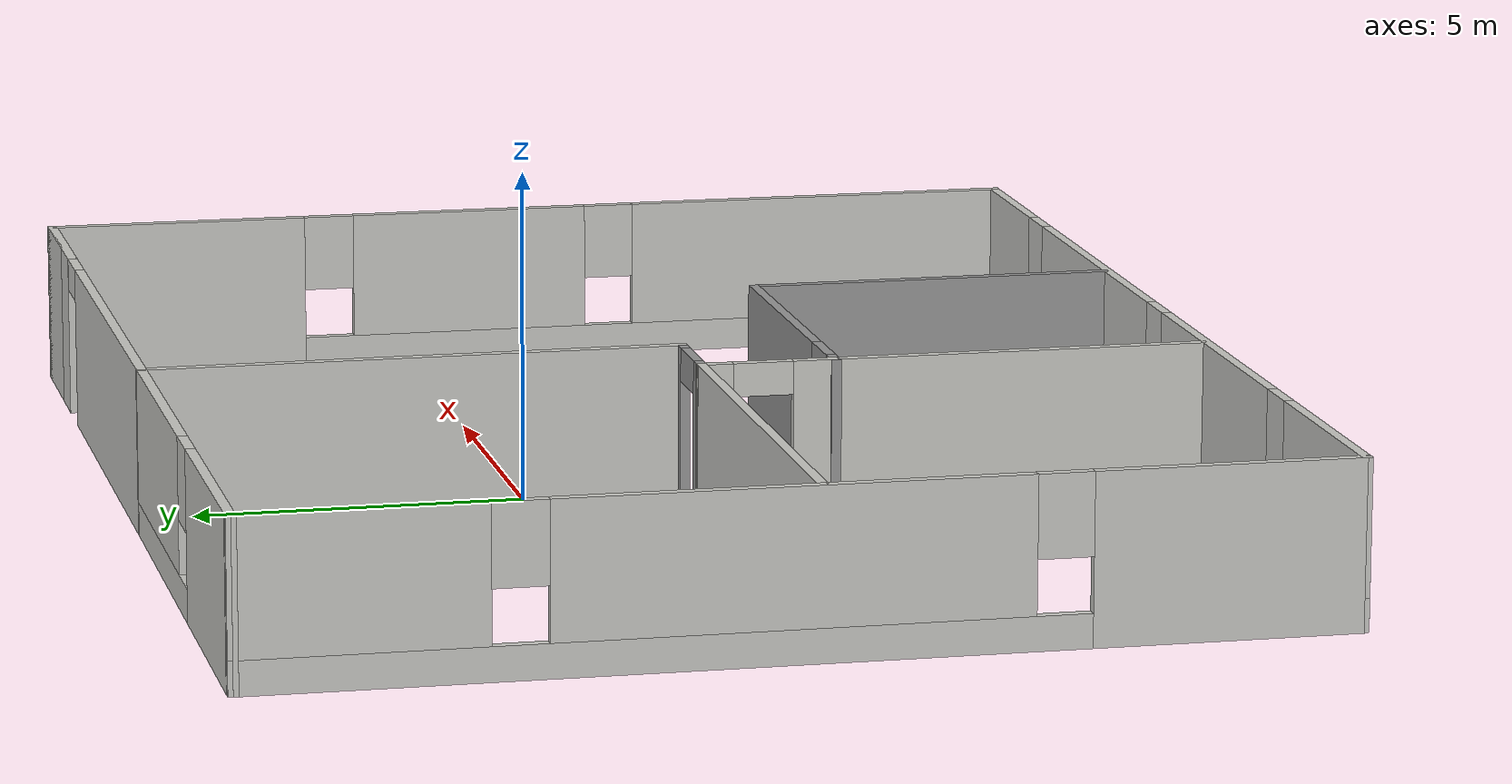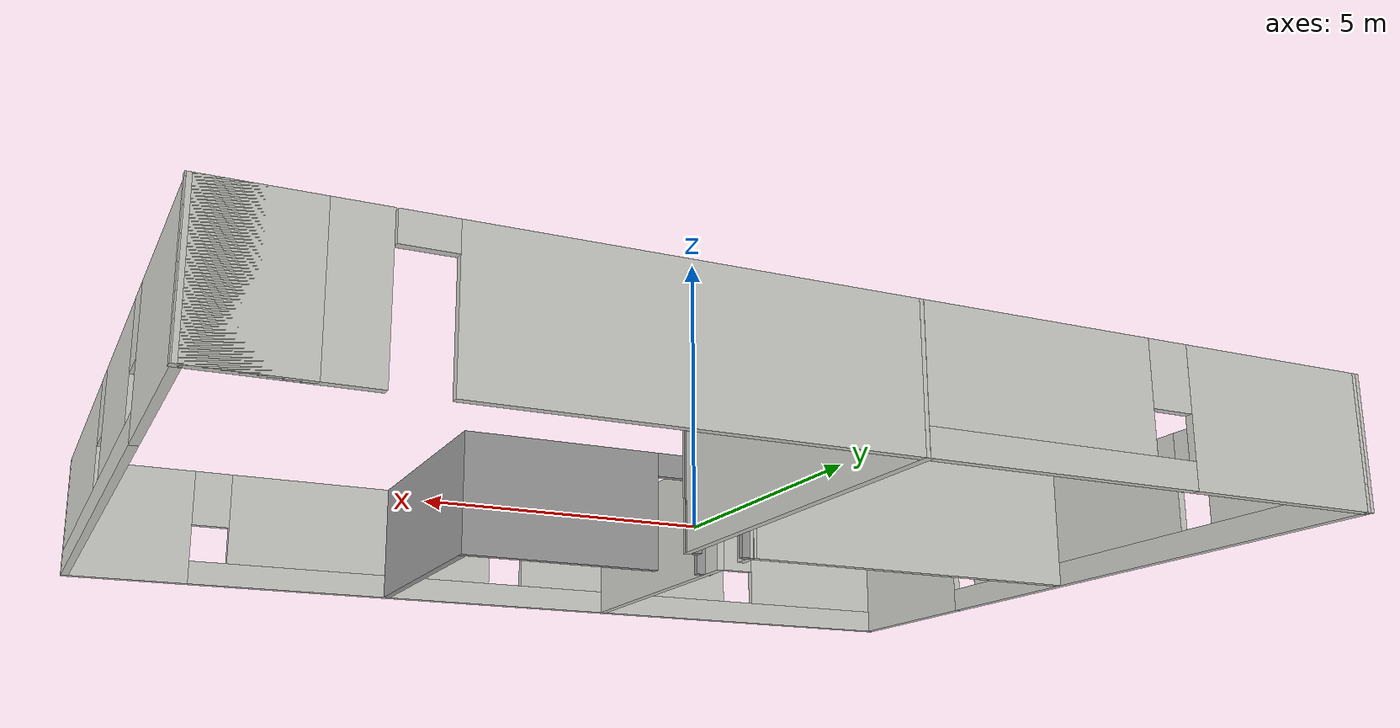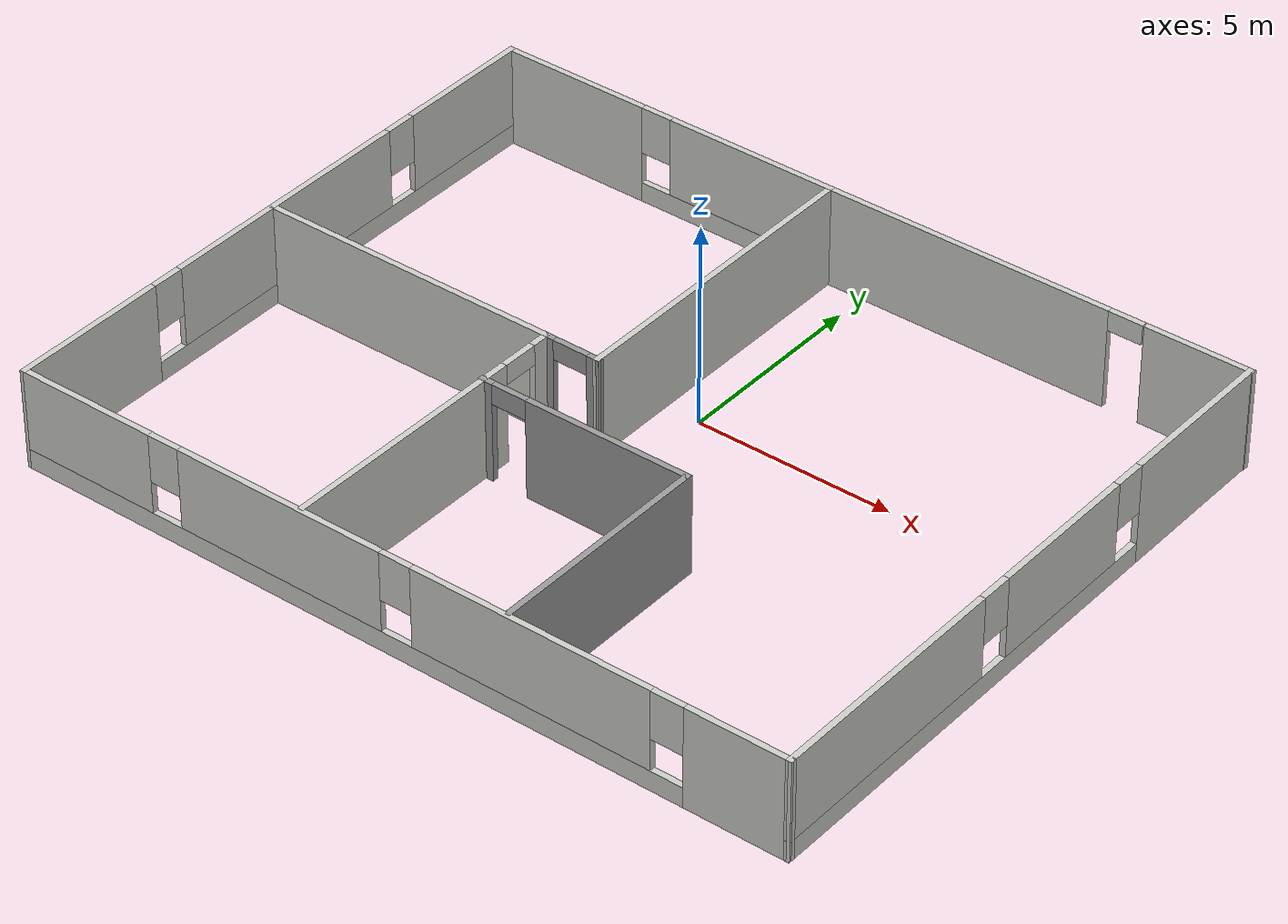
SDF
<?xml version='1.0'?>
<sdf version='1.7'>
  <model name='apartment_'>
    <pose>-0.07504 -2.00839 0 0 -0 0</pose>
    <link name='Wall_14'>
      <pose>-2.29995 -4.00422 0 0 -0 -1.57606</pose>
      <visual name='Wall_14_Visual_0'>
        <pose>-3.60522 0 1.25 0 -0 0</pose>
        <geometry>
          <box>
            <size>0.539661 0.15 2.5</size>
          </box>
        </geometry>
        <material>
          <script>
            <uri>file://media/materials/scripts/gazebo.material</uri>
            <name>Gazebo/CeilingTiled</name>
          </script>
          <ambient>1 1 1 1</ambient>
        </material>
        <meta>
          <layer>0</layer>
        </meta>
      </visual>
      <collision name='Wall_14_Collision_0'>
        <geometry>
          <box>
            <size>0.539661 0.15 2.5</size>
          </box>
        </geometry>
        <pose>-3.60522 0 1.25 0 -0 0</pose>
      </collision>
      <visual name='Wall_14_Visual_1'>
        <pose>0.71983 0 1.25 0 -0 0</pose>
        <geometry>
          <box>
            <size>6.31044 0.15 2.5</size>
          </box>
        </geometry>
        <material>
          <script>
            <uri>file://media/materials/scripts/gazebo.material</uri>
            <name>Gazebo/CeilingTiled</name>
          </script>
          <ambient>1 1 1 1</ambient>
        </material>
        <meta>
          <layer>0</layer>
        </meta>
      </visual>
      <collision name='Wall_14_Collision_1'>
        <geometry>
          <box>
            <size>6.31044 0.15 2.5</size>
          </box>
        </geometry>
        <pose>0.71983 0 1.25 0 -0 0</pose>
      </collision>
      <visual name='Wall_14_Visual_2'>
        <pose>-2.88539 0 2.25 0 -0 0</pose>
        <geometry>
          <box>
            <size>0.9 0.15 0.5</size>
          </box>
        </geometry>
        <material>
          <script>
            <uri>file://media/materials/scripts/gazebo.material</uri>
            <name>Gazebo/CeilingTiled</name>
          </script>
          <ambient>1 1 1 1</ambient>
        </material>
        <meta>
          <layer>0</layer>
        </meta>
      </visual>
      <collision name='Wall_14_Collision_2'>
        <geometry>
          <box>
            <size>0.9 0.15 0.5</size>
          </box>
        </geometry>
        <pose>-2.88539 0 2.25 0 -0 0</pose>
      </collision>
    </link>
    <link name='Wall_16'>
      <pose>0.355053 -2.20941 0 0 -0 0</pose>
      <visual name='Wall_16_Visual_0'>
        <pose>-2.56812 0 1.25 0 -0 0</pose>
        <geometry>
          <box>
            <size>0.363754 0.15 2.5</size>
          </box>
        </geometry>
        <material>
          <script>
            <uri>file://media/materials/scripts/gazebo.material</uri>
            <name>Gazebo/Grey</name>
          </script>
          <ambient>1 1 1 1</ambient>
        </material>
        <meta>
          <layer>0</layer>
        </meta>
      </visual>
      <collision name='Wall_16_Collision_0'>
        <geometry>
          <box>
            <size>0.363754 0.15 2.5</size>
          </box>
        </geometry>
        <pose>-2.56812 0 1.25 0 -0 0</pose>
      </collision>
      <visual name='Wall_16_Visual_1'>
        <pose>0.631877 0 1.25 0 -0 0</pose>
        <geometry>
          <box>
            <size>4.23625 0.15 2.5</size>
          </box>
        </geometry>
        <material>
          <script>
            <uri>file://media/materials/scripts/gazebo.material</uri>
            <name>Gazebo/Grey</name>
          </script>
          <ambient>1 1 1 1</ambient>
        </material>
        <meta>
          <layer>0</layer>
        </meta>
      </visual>
      <collision name='Wall_16_Collision_1'>
        <geometry>
          <box>
            <size>4.23625 0.15 2.5</size>
          </box>
        </geometry>
        <pose>0.631877 0 1.25 0 -0 0</pose>
      </collision>
      <visual name='Wall_16_Visual_2'>
        <pose>-1.93625 0 2.25 0 -0 0</pose>
        <geometry>
          <box>
            <size>0.9 0.15 0.5</size>
          </box>
        </geometry>
        <material>
          <script>
            <uri>file://media/materials/scripts/gazebo.material</uri>
            <name>Gazebo/Grey</name>
          </script>
          <ambient>1 1 1 1</ambient>
        </material>
        <meta>
          <layer>0</layer>
        </meta>
      </visual>
      <collision name='Wall_16_Collision_2'>
        <geometry>
          <box>
            <size>0.9 0.15 0.5</size>
          </box>
        </geometry>
        <pose>-1.93625 0 2.25 0 -0 0</pose>
      </collision>
    </link>
    <link name='Wall_17'>
      <collision name='Wall_17_Collision'>
        <geometry>
          <box>
            <size>5.75 0.15 2.5</size>
          </box>
        </geometry>
        <pose>0 0 1.25 0 -0 0</pose>
      </collision>
      <visual name='Wall_17_Visual'>
        <pose>0 0 1.25 0 -0 0</pose>
        <geometry>
          <box>
            <size>5.75 0.15 2.5</size>
          </box>
        </geometry>
        <material>
          <script>
            <uri>file://media/materials/scripts/gazebo.material</uri>
            <name>Gazebo/Grey</name>
          </script>
          <ambient>1 1 1 1</ambient>
        </material>
        <meta>
          <layer>0</layer>
        </meta>
      </visual>
      <pose>3.03005 -5.00941 0 0 -0 -1.5708</pose>
    </link>
    <link name='Wall_20'>
      <pose>-5.42496 7.87999 0 0 -0 -0.002358</pose>
      <visual name='Wall_20_Visual_0'>
        <pose>-2.62932 0 1.25 0 -0 0</pose>
        <geometry>
          <box>
            <size>3.92634 0.15 2.5</size>
          </box>
        </geometry>
        <material>
          <script>
            <uri>file://media/materials/scripts/gazebo.material</uri>
            <name>Gazebo/CeilingTiled</name>
          </script>
          <ambient>1 1 1 1</ambient>
        </material>
        <meta>
          <layer>0</layer>
        </meta>
      </visual>
      <collision name='Wall_20_Collision_0'>
        <geometry>
          <box>
            <size>3.92634 0.15 2.5</size>
          </box>
        </geometry>
        <pose>-2.62932 0 1.25 0 -0 0</pose>
      </collision>
      <visual name='Wall_20_Visual_1'>
        <pose>1.96317 0 0.25 0 -0 0</pose>
        <geometry>
          <box>
            <size>5.25864 0.15 0.5</size>
          </box>
        </geometry>
        <material>
          <script>
            <uri>file://media/materials/scripts/gazebo.material</uri>
            <name>Gazebo/CeilingTiled</name>
          </script>
          <ambient>1 1 1 1</ambient>
        </material>
        <meta>
          <layer>0</layer>
        </meta>
      </visual>
      <collision name='Wall_20_Collision_1'>
        <geometry>
          <box>
            <size>5.25864 0.15 0.5</size>
          </box>
        </geometry>
        <pose>1.96317 0 0.25 0 -0 0</pose>
      </collision>
      <visual name='Wall_20_Visual_2'>
        <pose>2.36317 0 1.5 0 -0 0</pose>
        <geometry>
          <box>
            <size>4.45864 0.15 2</size>
          </box>
        </geometry>
        <material>
          <script>
            <uri>file://media/materials/scripts/gazebo.material</uri>
            <name>Gazebo/CeilingTiled</name>
          </script>
          <ambient>1 1 1 1</ambient>
        </material>
        <meta>
          <layer>0</layer>
        </meta>
      </visual>
      <collision name='Wall_20_Collision_2'>
        <geometry>
          <box>
            <size>4.45864 0.15 2</size>
          </box>
        </geometry>
        <pose>2.36317 0 1.5 0 -0 0</pose>
      </collision>
      <visual name='Wall_20_Visual_3'>
        <pose>-0.26615 0 1.9 0 -0 0</pose>
        <geometry>
          <box>
            <size>0.8 0.15 1.2</size>
          </box>
        </geometry>
        <material>
          <script>
            <uri>file://media/materials/scripts/gazebo.material</uri>
            <name>Gazebo/CeilingTiled</name>
          </script>
          <ambient>1 1 1 1</ambient>
        </material>
        <meta>
          <layer>0</layer>
        </meta>
      </visual>
      <collision name='Wall_20_Collision_3'>
        <geometry>
          <box>
            <size>0.8 0.15 1.2</size>
          </box>
        </geometry>
        <pose>-0.26615 0 1.9 0 -0 0</pose>
      </collision>
    </link>
    <link name='Wall_22'>
      <pose>4.51752 7.86934 0 0 -0 0</pose>
      <visual name='Wall_22_Visual_0'>
        <pose>-1.79408 0 1.25 0 -0 0</pose>
        <geometry>
          <box>
            <size>7.41183 0.15 2.5</size>
          </box>
        </geometry>
        <material>
          <script>
            <uri>file://media/materials/scripts/gazebo.material</uri>
            <name>Gazebo/CeilingTiled</name>
          </script>
          <ambient>1 1 1 1</ambient>
        </material>
        <meta>
          <layer>0</layer>
        </meta>
      </visual>
      <collision name='Wall_22_Collision_0'>
        <geometry>
          <box>
            <size>7.41183 0.15 2.5</size>
          </box>
        </geometry>
        <pose>-1.79408 0 1.25 0 -0 0</pose>
      </collision>
      <visual name='Wall_22_Visual_1'>
        <pose>4.15592 0 1.25 0 -0 0</pose>
        <geometry>
          <box>
            <size>2.68817 0.15 2.5</size>
          </box>
        </geometry>
        <material>
          <script>
            <uri>file://media/materials/scripts/gazebo.material</uri>
            <name>Gazebo/CeilingTiled</name>
          </script>
          <ambient>1 1 1 1</ambient>
        </material>
        <meta>
          <layer>0</layer>
        </meta>
      </visual>
      <collision name='Wall_22_Collision_1'>
        <geometry>
          <box>
            <size>2.68817 0.15 2.5</size>
          </box>
        </geometry>
        <pose>4.15592 0 1.25 0 -0 0</pose>
      </collision>
      <visual name='Wall_22_Visual_2'>
        <pose>4.58979 0 1.25 0 -0 0</pose>
        <geometry>
          <box>
            <size>1.82043 0.15 2.5</size>
          </box>
        </geometry>
        <material>
          <script>
            <uri>file://media/materials/scripts/gazebo.material</uri>
            <name>Gazebo/CeilingTiled</name>
          </script>
          <ambient>1 1 1 1</ambient>
        </material>
        <meta>
          <layer>0</layer>
        </meta>
      </visual>
      <collision name='Wall_22_Collision_2'>
        <geometry>
          <box>
            <size>1.82043 0.15 2.5</size>
          </box>
        </geometry>
        <pose>4.58979 0 1.25 0 -0 0</pose>
      </collision>
      <visual name='Wall_22_Visual_3'>
        <pose>2.3457 0 2.25 0 -0 0</pose>
        <geometry>
          <box>
            <size>0.867743 0.15 0.5</size>
          </box>
        </geometry>
        <material>
          <script>
            <uri>file://media/materials/scripts/gazebo.material</uri>
            <name>Gazebo/CeilingTiled</name>
          </script>
          <ambient>1 1 1 1</ambient>
        </material>
        <meta>
          <layer>0</layer>
        </meta>
      </visual>
      <collision name='Wall_22_Collision_3'>
        <geometry>
          <box>
            <size>0.867743 0.15 0.5</size>
          </box>
        </geometry>
        <pose>2.3457 0 2.25 0 -0 0</pose>
      </collision>
    </link>
    <link name='Wall_24'>
      <collision name='Wall_24_Collision'>
        <geometry>
          <box>
            <size>7.75 0.15 2.5</size>
          </box>
        </geometry>
        <pose>0 0 1.25 0 -0 0</pose>
      </collision>
      <visual name='Wall_24_Visual'>
        <pose>0 0 1.25 0 -0 0</pose>
        <geometry>
          <box>
            <size>7.75 0.15 2.5</size>
          </box>
        </geometry>
        <material>
          <script>
            <uri>file://media/materials/scripts/gazebo.material</uri>
            <name>Gazebo/CeilingTiled</name>
          </script>
          <ambient>1 1 1 1</ambient>
        </material>
        <meta>
          <layer>0</layer>
        </meta>
      </visual>
      <pose>-6.07995 -0.204216 0 0 -0 3.14159</pose>
    </link>
    <link name='Wall_28'>
      <pose>-1.58371 -0.207438 0 0 -0 -0.004627</pose>
      <visual name='Wall_28_Visual_0'>
        <pose>-0.612339 0 1.25 0 -0 0</pose>
        <geometry>
          <box>
            <size>0.317806 0.15 2.5</size>
          </box>
        </geometry>
        <material>
          <script>
            <uri>file://media/materials/scripts/gazebo.material</uri>
            <name>Gazebo/Grey</name>
          </script>
          <ambient>1 1 1 1</ambient>
        </material>
        <meta>
          <layer>0</layer>
        </meta>
      </visual>
      <collision name='Wall_28_Collision_0'>
        <geometry>
          <box>
            <size>0.317806 0.15 2.5</size>
          </box>
        </geometry>
        <pose>-0.612339 0 1.25 0 -0 0</pose>
      </collision>
      <visual name='Wall_28_Visual_1'>
        <pose>0.608903 0 1.25 0 -0 0</pose>
        <geometry>
          <box>
            <size>0.324677 0.15 2.5</size>
          </box>
        </geometry>
        <material>
          <script>
            <uri>file://media/materials/scripts/gazebo.material</uri>
            <name>Gazebo/Grey</name>
          </script>
          <ambient>1 1 1 1</ambient>
        </material>
        <meta>
          <layer>0</layer>
        </meta>
      </visual>
      <collision name='Wall_28_Collision_1'>
        <geometry>
          <box>
            <size>0.324677 0.15 2.5</size>
          </box>
        </geometry>
        <pose>0.608903 0 1.25 0 -0 0</pose>
      </collision>
      <visual name='Wall_28_Visual_2'>
        <pose>-0.003436 0 2.25 0 -0 0</pose>
        <geometry>
          <box>
            <size>0.9 0.15 0.5</size>
          </box>
        </geometry>
        <material>
          <script>
            <uri>file://media/materials/scripts/gazebo.material</uri>
            <name>Gazebo/Grey</name>
          </script>
          <ambient>1 1 1 1</ambient>
        </material>
        <meta>
          <layer>0</layer>
        </meta>
      </visual>
      <collision name='Wall_28_Collision_2'>
        <geometry>
          <box>
            <size>0.9 0.15 0.5</size>
          </box>
        </geometry>
        <pose>-0.003436 0 2.25 0 -0 0</pose>
      </collision>
    </link>
    <link name='Wall_3'>
      <pose>0.017521 -7.89066 0 0 -0 3.14159</pose>
      <visual name='Wall_3_Visual_0'>
        <pose>-8.713 0 1.25 0 -0 0</pose>
        <geometry>
          <box>
            <size>2.574 0.15 2.5</size>
          </box>
        </geometry>
        <material>
          <script>
            <uri>file://media/materials/scripts/gazebo.material</uri>
            <name>Gazebo/CeilingTiled</name>
          </script>
          <ambient>1 1 1 1</ambient>
        </material>
        <meta>
          <layer>0</layer>
        </meta>
      </visual>
      <collision name='Wall_3_Collision_0'>
        <geometry>
          <box>
            <size>2.574 0.15 2.5</size>
          </box>
        </geometry>
        <pose>-8.713 0 1.25 0 -0 0</pose>
      </collision>
      <visual name='Wall_3_Visual_1'>
        <pose>1.287 0 0.25 0 -0 0</pose>
        <geometry>
          <box>
            <size>17.426 0.15 0.5</size>
          </box>
        </geometry>
        <material>
          <script>
            <uri>file://media/materials/scripts/gazebo.material</uri>
            <name>Gazebo/CeilingTiled</name>
          </script>
          <ambient>1 1 1 1</ambient>
        </material>
        <meta>
          <layer>0</layer>
        </meta>
      </visual>
      <collision name='Wall_3_Collision_1'>
        <geometry>
          <box>
            <size>17.426 0.15 0.5</size>
          </box>
        </geometry>
        <pose>1.287 0 0.25 0 -0 0</pose>
      </collision>
      <visual name='Wall_3_Visual_2'>
        <pose>-3.6107 0 1.5 0 -0 0</pose>
        <geometry>
          <box>
            <size>6.03059 0.15 2</size>
          </box>
        </geometry>
        <material>
          <script>
            <uri>file://media/materials/scripts/gazebo.material</uri>
            <name>Gazebo/CeilingTiled</name>
          </script>
          <ambient>1 1 1 1</ambient>
        </material>
        <meta>
          <layer>0</layer>
        </meta>
      </visual>
      <collision name='Wall_3_Collision_2'>
        <geometry>
          <box>
            <size>6.03059 0.15 2</size>
          </box>
        </geometry>
        <pose>-3.6107 0 1.5 0 -0 0</pose>
      </collision>
      <visual name='Wall_3_Visual_3'>
        <pose>2.90033 0 1.5 0 -0 0</pose>
        <geometry>
          <box>
            <size>5.39146 0.15 2</size>
          </box>
        </geometry>
        <material>
          <script>
            <uri>file://media/materials/scripts/gazebo.material</uri>
            <name>Gazebo/CeilingTiled</name>
          </script>
          <ambient>1 1 1 1</ambient>
        </material>
        <meta>
          <layer>0</layer>
        </meta>
      </visual>
      <collision name='Wall_3_Collision_3'>
        <geometry>
          <box>
            <size>5.39146 0.15 2</size>
          </box>
        </geometry>
        <pose>2.90033 0 1.5 0 -0 0</pose>
      </collision>
      <visual name='Wall_3_Visual_4'>
        <pose>8.19803 0 1.5 0 -0 0</pose>
        <geometry>
          <box>
            <size>3.60394 0.15 2</size>
          </box>
        </geometry>
        <material>
          <script>
            <uri>file://media/materials/scripts/gazebo.material</uri>
            <name>Gazebo/CeilingTiled</name>
          </script>
          <ambient>1 1 1 1</ambient>
        </material>
        <meta>
          <layer>0</layer>
        </meta>
      </visual>
      <collision name='Wall_3_Collision_4'>
        <geometry>
          <box>
            <size>3.60394 0.15 2</size>
          </box>
        </geometry>
        <pose>8.19803 0 1.5 0 -0 0</pose>
      </collision>
      <visual name='Wall_3_Visual_5'>
        <pose>-7.026 0 1.9 0 -0 0</pose>
        <geometry>
          <box>
            <size>0.8 0.15 1.2</size>
          </box>
        </geometry>
        <material>
          <script>
            <uri>file://media/materials/scripts/gazebo.material</uri>
            <name>Gazebo/CeilingTiled</name>
          </script>
          <ambient>1 1 1 1</ambient>
        </material>
        <meta>
          <layer>0</layer>
        </meta>
      </visual>
      <collision name='Wall_3_Collision_5'>
        <geometry>
          <box>
            <size>0.8 0.15 1.2</size>
          </box>
        </geometry>
        <pose>-7.026 0 1.9 0 -0 0</pose>
      </collision>
      <visual name='Wall_3_Visual_6'>
        <pose>-0.195403 0 1.9 0 -0 0</pose>
        <geometry>
          <box>
            <size>0.8 0.15 1.2</size>
          </box>
        </geometry>
        <material>
          <script>
            <uri>file://media/materials/scripts/gazebo.material</uri>
            <name>Gazebo/CeilingTiled</name>
          </script>
          <ambient>1 1 1 1</ambient>
        </material>
        <meta>
          <layer>0</layer>
        </meta>
      </visual>
      <collision name='Wall_3_Collision_6'>
        <geometry>
          <box>
            <size>0.8 0.15 1.2</size>
          </box>
        </geometry>
        <pose>-0.195403 0 1.9 0 -0 0</pose>
      </collision>
      <visual name='Wall_3_Visual_7'>
        <pose>5.99606 0 1.9 0 -0 0</pose>
        <geometry>
          <box>
            <size>0.8 0.15 1.2</size>
          </box>
        </geometry>
        <material>
          <script>
            <uri>file://media/materials/scripts/gazebo.material</uri>
            <name>Gazebo/CeilingTiled</name>
          </script>
          <ambient>1 1 1 1</ambient>
        </material>
        <meta>
          <layer>0</layer>
        </meta>
      </visual>
      <collision name='Wall_3_Collision_7'>
        <geometry>
          <box>
            <size>0.8 0.15 1.2</size>
          </box>
        </geometry>
        <pose>5.99606 0 1.9 0 -0 0</pose>
      </collision>
    </link>
    <link name='Wall_5'>
      <pose>-9.92496 -5e-06 0 0 -0 1.57301</pose>
      <visual name='Wall_5_Visual_0'>
        <pose>-5.98407 0 1.25 0 -0 0</pose>
        <geometry>
          <box>
            <size>3.9632 0.15 2.5</size>
          </box>
        </geometry>
        <material>
          <script>
            <uri>file://media/materials/scripts/gazebo.material</uri>
            <name>Gazebo/CeilingTiled</name>
          </script>
          <ambient>1 1 1 1</ambient>
        </material>
        <meta>
          <layer>0</layer>
        </meta>
      </visual>
      <collision name='Wall_5_Collision_0'>
        <geometry>
          <box>
            <size>3.9632 0.15 2.5</size>
          </box>
        </geometry>
        <pose>-5.98407 0 1.25 0 -0 0</pose>
      </collision>
      <visual name='Wall_5_Visual_1'>
        <pose>1.9816 0 0.25 0 -0 0</pose>
        <geometry>
          <box>
            <size>11.9681 0.15 0.5</size>
          </box>
        </geometry>
        <material>
          <script>
            <uri>file://media/materials/scripts/gazebo.material</uri>
            <name>Gazebo/CeilingTiled</name>
          </script>
          <ambient>1 1 1 1</ambient>
        </material>
        <meta>
          <layer>0</layer>
        </meta>
      </visual>
      <collision name='Wall_5_Collision_1'>
        <geometry>
          <box>
            <size>11.9681 0.15 0.5</size>
          </box>
        </geometry>
        <pose>1.9816 0 0.25 0 -0 0</pose>
      </collision>
      <visual name='Wall_5_Visual_2'>
        <pose>0.187618 0 1.5 0 -0 0</pose>
        <geometry>
          <box>
            <size>6.78018 0.15 2</size>
          </box>
        </geometry>
        <material>
          <script>
            <uri>file://media/materials/scripts/gazebo.material</uri>
            <name>Gazebo/CeilingTiled</name>
          </script>
          <ambient>1 1 1 1</ambient>
        </material>
        <meta>
          <layer>0</layer>
        </meta>
      </visual>
      <collision name='Wall_5_Collision_2'>
        <geometry>
          <box>
            <size>6.78018 0.15 2</size>
          </box>
        </geometry>
        <pose>0.187618 0 1.5 0 -0 0</pose>
      </collision>
      <visual name='Wall_5_Visual_3'>
        <pose>6.17169 0 1.5 0 -0 0</pose>
        <geometry>
          <box>
            <size>3.58796 0.15 2</size>
          </box>
        </geometry>
        <material>
          <script>
            <uri>file://media/materials/scripts/gazebo.material</uri>
            <name>Gazebo/CeilingTiled</name>
          </script>
          <ambient>1 1 1 1</ambient>
        </material>
        <meta>
          <layer>0</layer>
        </meta>
      </visual>
      <collision name='Wall_5_Collision_3'>
        <geometry>
          <box>
            <size>3.58796 0.15 2</size>
          </box>
        </geometry>
        <pose>6.17169 0 1.5 0 -0 0</pose>
      </collision>
      <visual name='Wall_5_Visual_4'>
        <pose>-3.60247 0 1.9 0 -0 0</pose>
        <geometry>
          <box>
            <size>0.8 0.15 1.2</size>
          </box>
        </geometry>
        <material>
          <script>
            <uri>file://media/materials/scripts/gazebo.material</uri>
            <name>Gazebo/CeilingTiled</name>
          </script>
          <ambient>1 1 1 1</ambient>
        </material>
        <meta>
          <layer>0</layer>
        </meta>
      </visual>
      <collision name='Wall_5_Collision_4'>
        <geometry>
          <box>
            <size>0.8 0.15 1.2</size>
          </box>
        </geometry>
        <pose>-3.60247 0 1.9 0 -0 0</pose>
      </collision>
      <visual name='Wall_5_Visual_5'>
        <pose>3.97771 0 1.9 0 -0 0</pose>
        <geometry>
          <box>
            <size>0.8 0.15 1.2</size>
          </box>
        </geometry>
        <material>
          <script>
            <uri>file://media/materials/scripts/gazebo.material</uri>
            <name>Gazebo/CeilingTiled</name>
          </script>
          <ambient>1 1 1 1</ambient>
        </material>
        <meta>
          <layer>0</layer>
        </meta>
      </visual>
      <collision name='Wall_5_Collision_5'>
        <geometry>
          <box>
            <size>0.8 0.15 1.2</size>
          </box>
        </geometry>
        <pose>3.97771 0 1.9 0 -0 0</pose>
      </collision>
    </link>
    <link name='Wall_7'>
      <pose>9.93252 -0.010659 0 0 -0 -1.56953</pose>
      <visual name='Wall_7_Visual_0'>
        <pose>-5.86158 0 1.25 0 -0 0</pose>
        <geometry>
          <box>
            <size>4.18685 0.15 2.5</size>
          </box>
        </geometry>
        <material>
          <script>
            <uri>file://media/materials/scripts/gazebo.material</uri>
            <name>Gazebo/CeilingTiled</name>
          </script>
          <ambient>1 1 1 1</ambient>
        </material>
        <meta>
          <layer>0</layer>
        </meta>
      </visual>
      <collision name='Wall_7_Collision_0'>
        <geometry>
          <box>
            <size>4.18685 0.15 2.5</size>
          </box>
        </geometry>
        <pose>-5.86158 0 1.25 0 -0 0</pose>
      </collision>
      <visual name='Wall_7_Visual_1'>
        <pose>2.09342 0 0.25 0 -0 0</pose>
        <geometry>
          <box>
            <size>11.7232 0.15 0.5</size>
          </box>
        </geometry>
        <material>
          <script>
            <uri>file://media/materials/scripts/gazebo.material</uri>
            <name>Gazebo/CeilingTiled</name>
          </script>
          <ambient>1 1 1 1</ambient>
        </material>
        <meta>
          <layer>0</layer>
        </meta>
      </visual>
      <collision name='Wall_7_Collision_1'>
        <geometry>
          <box>
            <size>11.7232 0.15 0.5</size>
          </box>
        </geometry>
        <pose>2.09342 0 0.25 0 -0 0</pose>
      </collision>
      <visual name='Wall_7_Visual_2'>
        <pose>-1.04032 0 1.5 0 -0 0</pose>
        <geometry>
          <box>
            <size>3.85569 0.15 2</size>
          </box>
        </geometry>
        <material>
          <script>
            <uri>file://media/materials/scripts/gazebo.material</uri>
            <name>Gazebo/CeilingTiled</name>
          </script>
          <ambient>1 1 1 1</ambient>
        </material>
        <meta>
          <layer>0</layer>
        </meta>
      </visual>
      <collision name='Wall_7_Collision_2'>
        <geometry>
          <box>
            <size>3.85569 0.15 2</size>
          </box>
        </geometry>
        <pose>-1.04032 0 1.5 0 -0 0</pose>
      </collision>
      <visual name='Wall_7_Visual_3'>
        <pose>4.82127 0 1.5 0 -0 0</pose>
        <geometry>
          <box>
            <size>6.26748 0.15 2</size>
          </box>
        </geometry>
        <material>
          <script>
            <uri>file://media/materials/scripts/gazebo.material</uri>
            <name>Gazebo/CeilingTiled</name>
          </script>
          <ambient>1 1 1 1</ambient>
        </material>
        <meta>
          <layer>0</layer>
        </meta>
      </visual>
      <collision name='Wall_7_Collision_3'>
        <geometry>
          <box>
            <size>6.26748 0.15 2</size>
          </box>
        </geometry>
        <pose>4.82127 0 1.5 0 -0 0</pose>
      </collision>
      <visual name='Wall_7_Visual_4'>
        <pose>-3.36816 0 1.9 0 -0 0</pose>
        <geometry>
          <box>
            <size>0.8 0.15 1.2</size>
          </box>
        </geometry>
        <material>
          <script>
            <uri>file://media/materials/scripts/gazebo.material</uri>
            <name>Gazebo/CeilingTiled</name>
          </script>
          <ambient>1 1 1 1</ambient>
        </material>
        <meta>
          <layer>0</layer>
        </meta>
      </visual>
      <collision name='Wall_7_Collision_4'>
        <geometry>
          <box>
            <size>0.8 0.15 1.2</size>
          </box>
        </geometry>
        <pose>-3.36816 0 1.9 0 -0 0</pose>
      </collision>
      <visual name='Wall_7_Visual_5'>
        <pose>1.28753 0 1.9 0 -0 0</pose>
        <geometry>
          <box>
            <size>0.8 0.15 1.2</size>
          </box>
        </geometry>
        <material>
          <script>
            <uri>file://media/materials/scripts/gazebo.material</uri>
            <name>Gazebo/CeilingTiled</name>
          </script>
          <ambient>1 1 1 1</ambient>
        </material>
        <meta>
          <layer>0</layer>
        </meta>
      </visual>
      <collision name='Wall_7_Collision_5'>
        <geometry>
          <box>
            <size>0.8 0.15 1.2</size>
          </box>
        </geometry>
        <pose>1.28753 0 1.9 0 -0 0</pose>
      </collision>
    </link>
    <link name='Wall_9'>
      <collision name='Wall_9_Collision'>
        <geometry>
          <box>
            <size>8.23002 0.15 2.5</size>
          </box>
        </geometry>
        <pose>0 0 1.25 0 -0 0</pose>
      </collision>
      <visual name='Wall_9_Visual'>
        <pose>0 0 1.25 0 -0 0</pose>
        <geometry>
          <box>
            <size>8.23002 0.15 2.5</size>
          </box>
        </geometry>
        <material>
          <script>
            <uri>file://media/materials/scripts/gazebo.material</uri>
            <name>Gazebo/CeilingTiled</name>
          </script>
          <ambient>1 1 1 1</ambient>
        </material>
        <meta>
          <layer>0</layer>
        </meta>
      </visual>
      <pose>-0.897479 3.82934 0 0 -0 -1.56832</pose>
    </link>
    <static>1</static>
  </model>
</sdf>
